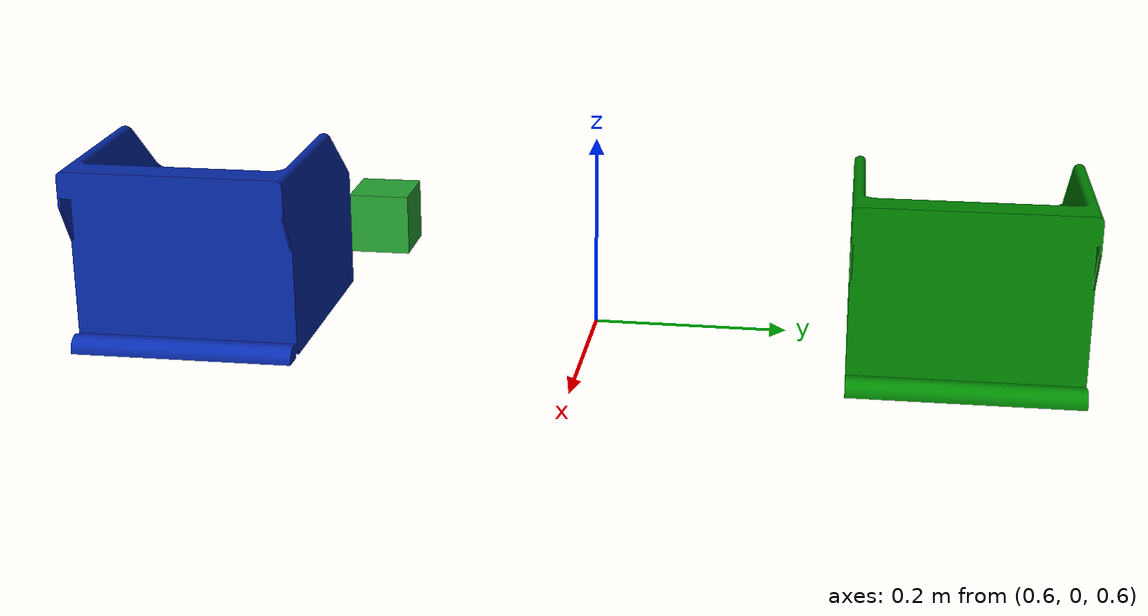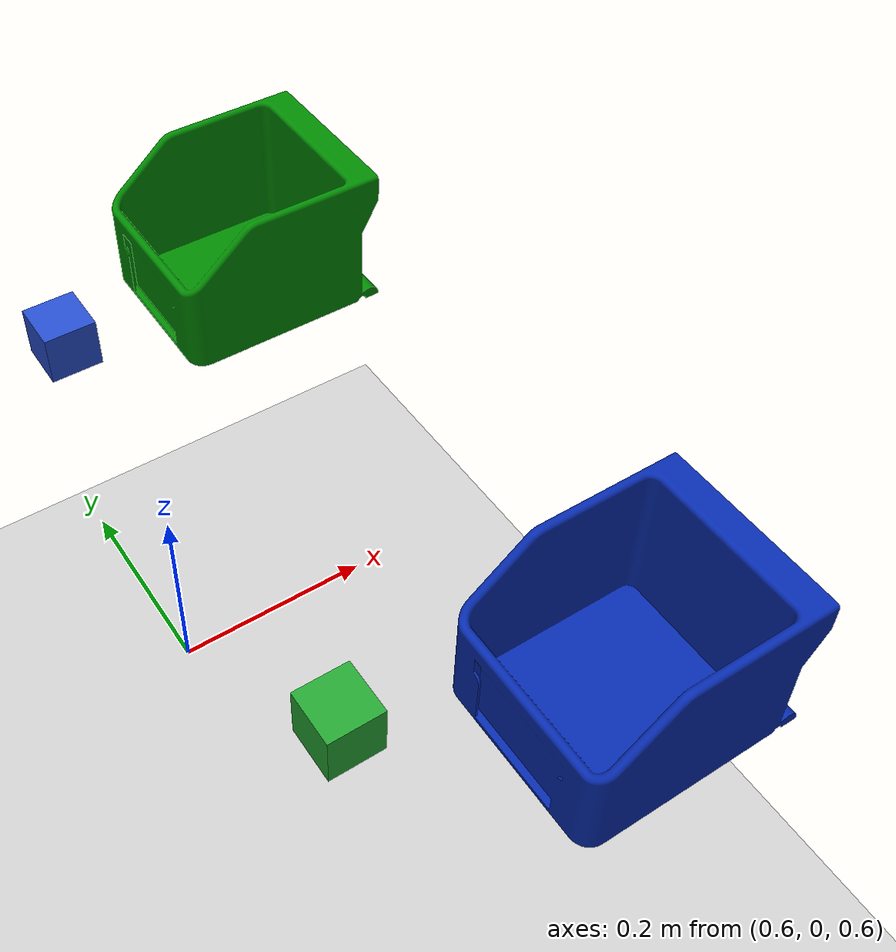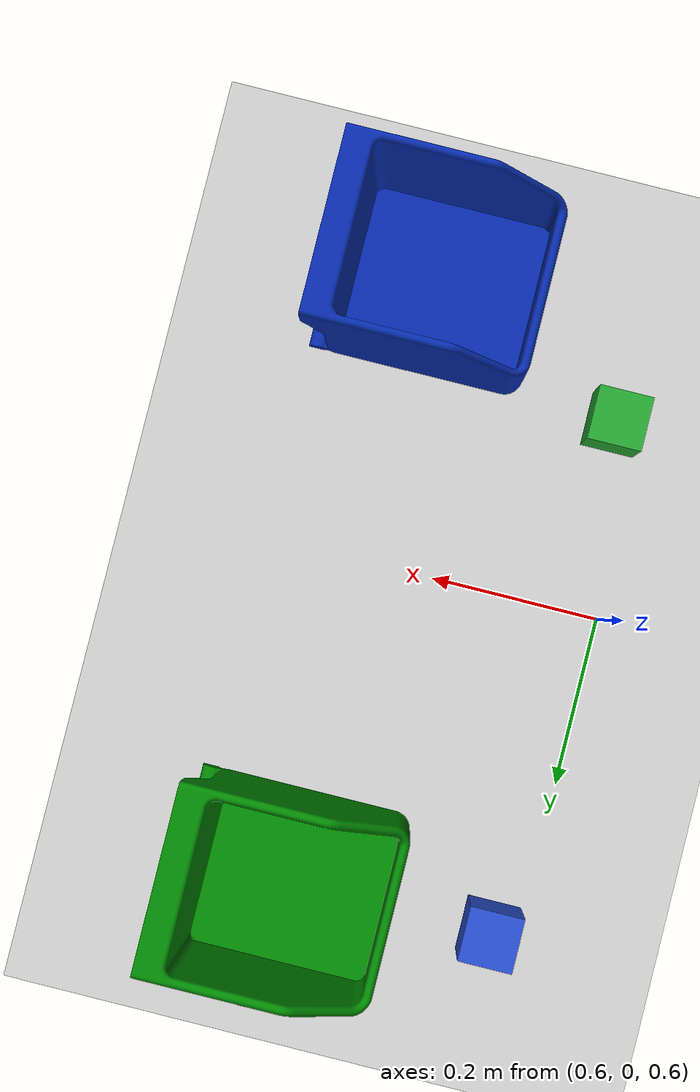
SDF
<sdf version="1.4">
 <world name="default">
  <include><uri>model://ground_plane</uri></include>
  <include><uri>model://sun</uri></include>
  <include>
   <uri>model://demo_cube</uri>
   <name>demo_cube_blue</name>
   <pose>0.64728 0.363 0.722999 0 0 0</pose>
  </include>
  <include>
   <uri>model://demo_cube_green</uri>
   <name>demo_cube_green</name>
   <pose>0.64728 -0.213097 0.722999 0 0 0</pose>
  </include>
  <include>
   <uri>model://50mmbin_green</uri>
   <name>50mmbin_green</name>
   <pose>0.877488 0.363 0.694133 0 0 -1.57</pose>
  </include>
  <include>
   <uri>model://50mmbin</uri>
   <name>50mmbin_blue</name>
   <pose>0.877488 -0.316133 0.696021 0 0 -1.57</pose>
  </include>
  <light name="user_point_light_0" type="sun"><pose>1.2489 0.0 4.0 0 0 0</pose></light>
 </world>
</sdf>

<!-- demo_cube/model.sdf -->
<sdf version='1.4'>
  <model name="demo_cube">
      <static>0</static>
      <link name='link'>
        <inertial>
          <mass>0.25</mass>
          <inertia>
            <ixx>0.001</ixx>
            <ixy>0.000000</ixy>
            <ixz>0.000000</ixz>
            <iyy>0.001</iyy>
            <iyz>0.000000</iyz>
            <izz>0.001</izz>
          </inertia>
        </inertial>
        <collision name='collision'>
          <geometry>
            <box>
              <size>0.060 0.060 0.060</size>
            </box>
          </geometry>
          <surface>
            <friction>
              <ode>
                <mu>60.0</mu>
                <mu2>60.0</mu2>
              </ode>
            </friction>
            <contact>
              <ode>
                <kp>1000000.0</kp>
                <kd>100.0</kd>
                <max_vel>1.0</max_vel>
                <min_depth>0.002</min_depth>
              </ode>
            </contact>
          </surface>
        </collision>
        <visual name='visual'>
          <geometry>
            <box>
              <size>0.060 0.060 0.060</size>
            </box>
          </geometry>
          <material>
            <script>
              <uri>file://media/materials/scripts/gazebo.material</uri>
              <name>Gazebo/Blue</name>
            </script>
          </material>
        </visual>
        <velocity_decay>
          <linear>0.000000</linear>
          <angular>0.000000</angular>
        </velocity_decay>
        <self_collide>0</self_collide>
        <kinematic>0</kinematic>
        <gravity>1</gravity>
      </link>
  </model>
</sdf>

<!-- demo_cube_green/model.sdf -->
<sdf version='1.4'>
  <model name="demo_cube_green">
      <static>0</static>
      <link name='link'>
        <inertial>
          <mass>0.25</mass>
          <inertia>
            <ixx>0.001</ixx>
            <ixy>0.000000</ixy>
            <ixz>0.000000</ixz>
            <iyy>0.001</iyy>
            <iyz>0.000000</iyz>
            <izz>0.001</izz>
          </inertia>
        </inertial>
        <collision name='collision'>
          <geometry>
            <box>
              <size>0.060 0.060 0.060</size>
            </box>
          </geometry>
          <surface>
            <friction>
              <ode>
                <mu>60.0</mu>
                <mu2>60.0</mu2>
              </ode>
            </friction>
            <contact>
              <ode>
                <kp>1000000.0</kp>
                <kd>100.0</kd>
                <max_vel>1.0</max_vel>
                <min_depth>0.002</min_depth>
              </ode>
            </contact>
          </surface>
        </collision>
        <visual name='visual'>
          <geometry>
            <box>
              <size>0.060 0.060 0.060</size>
            </box>
          </geometry>
          <material>
            <script>
              <uri>file://media/materials/scripts/gazebo.material</uri>
              <name>Gazebo/Green</name>
            </script>
          </material>
        </visual>
        <velocity_decay>
          <linear>0.000000</linear>
          <angular>0.000000</angular>
        </velocity_decay>
        <self_collide>0</self_collide>
        <kinematic>0</kinematic>
        <gravity>1</gravity>
      </link>
  </model>
</sdf>

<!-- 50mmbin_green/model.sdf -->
<sdf version='1.4'>
  <model name="50mmbin_green">
      <static>1</static>
      <link name='link'>
        <inertial>
          <mass>0.0189132</mass>
          <inertia>
            <ixx>3.36060179959e-06</ixx>
            <ixy>0.000000</ixy>
            <ixz>0.000000</ixz>
            <iyy>3.36060179959e-06</iyy>
            <iyz>0.000000</iyz>
            <izz>1.34975977923e-06</izz>
          </inertia>
        </inertial>
        <collision name='collision'>
          <geometry>
            <mesh>
              <uri>model://50mmbin_green/meshes/50mm.stl</uri>
              <scale>1 1 1</scale>
            </mesh>
          </geometry>
          <surface>
            <friction>
              <ode>
                <mu>30.0</mu>
                <mu2>30.0</mu2>
              </ode>
            </friction>
          </surface>
        </collision>
        <visual name='visual'>
          <geometry>
            <mesh>
              <uri>model://50mmbin_green/meshes/50mm_green.dae</uri>
              <scale>1 1 1</scale>
            </mesh>
          </geometry>
        </visual>
        <velocity_decay>
          <linear>0.000000</linear>
          <angular>0.000000</angular>
        </velocity_decay>
        <self_collide>0</self_collide>
        <kinematic>0</kinematic>
        <gravity>1</gravity>
      </link>
  </model>
</sdf>

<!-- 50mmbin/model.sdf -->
<sdf version='1.4'>
  <model name="50mmbin">
      <static>1</static>
      <link name='link'>
        <inertial>
          <mass>0.0189132</mass>
          <inertia>
            <ixx>3.36060179959e-06</ixx>
            <ixy>0.000000</ixy>
            <ixz>0.000000</ixz>
            <iyy>3.36060179959e-06</iyy>
            <iyz>0.000000</iyz>
            <izz>1.34975977923e-06</izz>
          </inertia>
        </inertial>
        <collision name='collision'>
          <geometry>
            <mesh>
              <uri>model://50mmbin/meshes/50mm.stl</uri>
              <scale>1 1 1</scale>
            </mesh>
          </geometry>
          <surface>
            <friction>
              <ode>
                <mu>30.0</mu>
                <mu2>30.0</mu2>
              </ode>
            </friction>
          </surface>
        </collision>
        <visual name='visual'>
          <geometry>
            <mesh>
              <uri>model://50mmbin/meshes/50mm.dae</uri>
              <scale>1 1 1</scale>
            </mesh>
          </geometry>
        </visual>
        <velocity_decay>
          <linear>0.000000</linear>
          <angular>0.000000</angular>
        </velocity_decay>
        <self_collide>0</self_collide>
        <kinematic>0</kinematic>
        <gravity>1</gravity>
      </link>
  </model>
</sdf>
